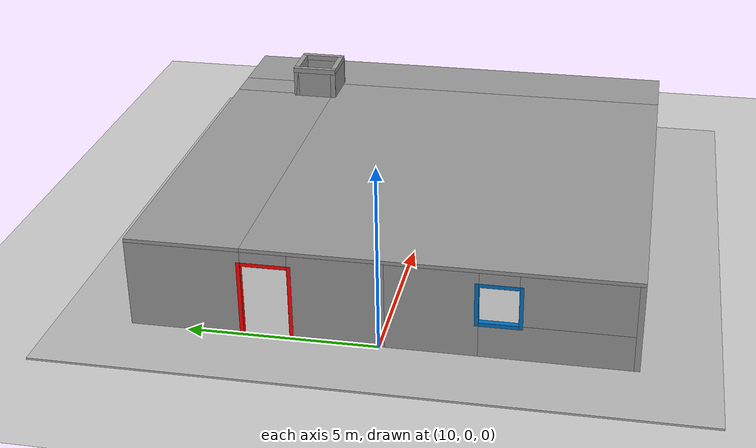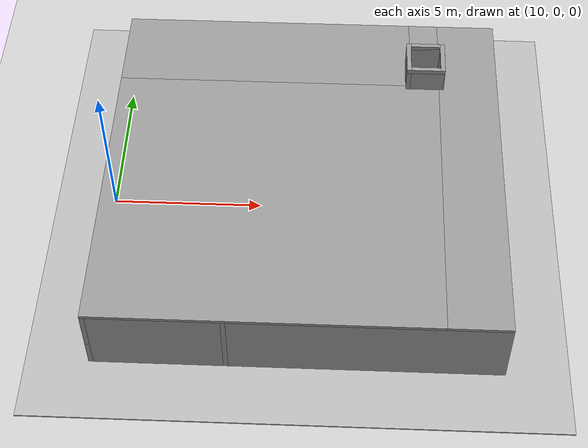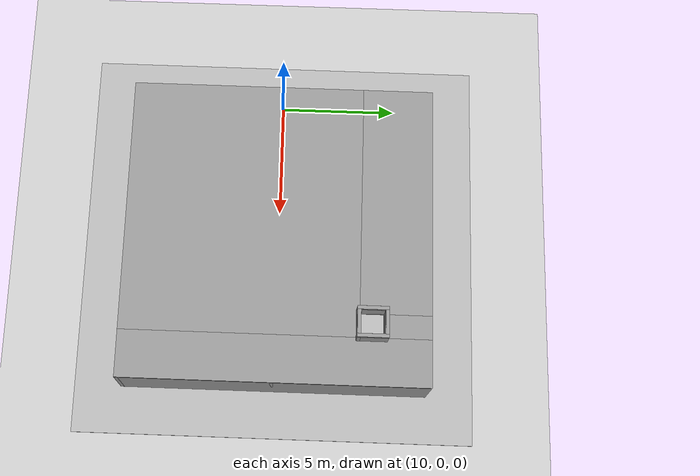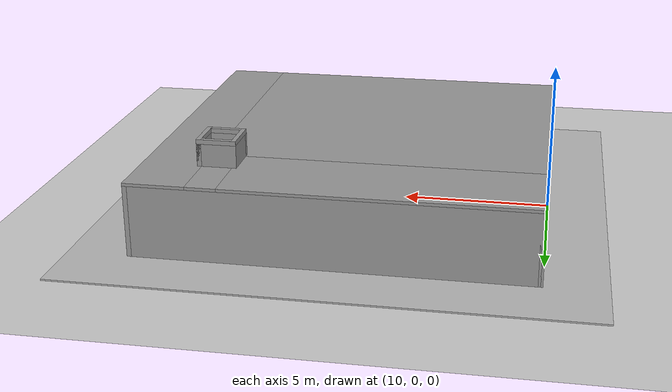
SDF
<?xml version="1.0" ?>
<sdf version="1.5">
  <world name="default">

    <!-- Place user camera -->
    <gui>
        <camera name="user_camera">
            <pose>-4.894847 8.114561 4.637910 0.000000 0.307999 -0.659998</pose>
        </camera>
    </gui>

    <!-- A global light source -->
    <include>
      <uri>model://sun</uri>
    </include>
    <!-- A ground plane -->
    <include>
      <uri>model://ground_plane</uri>
    </include>

    <!-- The IMAV 2016 indoor building -->
    <include>
        <uri>model://imav2016_indoor</uri>
        <pose>16.5 0 0 0 0 3.14</pose>
    </include>
  </world>
</sdf>

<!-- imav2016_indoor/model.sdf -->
<sdf version='1.6'>
  <model name='imav2016_indoor'>
    <pose frame=''>0 0 0 0 -0 0</pose>

    <link name='Floor_0'>
      <collision name='Floor_0_Collision_0'>
        <geometry>
          <box>
            <size>2 13 0.1</size>
          </box>
        </geometry>
        <pose frame=''>-5.5 0 0.05 0 -0 0</pose>
      </collision>
      <visual name='Floor_0_Visual_0'>
        <pose frame=''>-5.5 0 0.05 0 -0 0</pose>
        <geometry>
          <box>
            <size>2 13 0.1</size>
          </box>
        </geometry>
        <material>
          <script>
            <uri>file://media/materials/scripts/gazebo.material</uri>
            <name>Gazebo/Grey</name>
          </script>
          <ambient>1 1 1 1</ambient>
        </material>
        <meta>
          <layer>1</layer>
        </meta>
      </visual>

      <collision name='Floor_0_Collision_1'>
        <geometry>
          <box>
            <size>11 10 0.1</size>
          </box>
        </geometry>
        <pose frame=''>1 1.5 0.05 0 -0 0</pose>
      </collision>
      <visual name='Floor_0_Visual_1'>
        <pose frame=''>1 1.5 0.05 0 -0 0</pose>
        <geometry>
          <box>
            <size>11 10 0.1</size>
          </box>
        </geometry>
        <material>
          <script>
            <uri>file://media/materials/scripts/gazebo.material</uri>
            <name>Gazebo/Grey</name>
          </script>
          <ambient>1 1 1 1</ambient>
        </material>
        <meta>
          <layer>1</layer>
        </meta>
      </visual>

      <collision name='Floor_0_Collision_2'>
        <geometry>
          <box>
            <size>10 3 0.1</size>
          </box>
        </geometry>
        <pose frame=''>1.5 -5 0.05 0 -0 0</pose>
      </collision>
      <visual name='Floor_0_Visual_2'>
        <pose frame=''>1.5 -5 0.05 0 -0 0</pose>
        <geometry>
          <box>
            <size>10 3 0.1</size>
          </box>
        </geometry>
        <material>
          <script>
            <uri>file://media/materials/scripts/gazebo.material</uri>
            <name>Gazebo/Grey</name>
          </script>
          <ambient>1 1 1 1</ambient>
        </material>
        <meta>
          <layer>1</layer>
        </meta>
      </visual>

      <collision name='Floor_0_Collision_3'>
        <geometry>
          <box>
            <size>1 2 0.1</size>
          </box>
        </geometry>
        <pose frame=''>-4 -5.5 0.05 0 -0 0</pose>
      </collision>
      <visual name='Floor_0_Visual_3'>
        <pose frame=''>-4 -5.5 0.05 0 -0 0</pose>
        <geometry>
          <box>
            <size>1 2 0.1</size>
          </box>
        </geometry>
        <material>
          <script>
            <uri>file://media/materials/scripts/gazebo.material</uri>
            <name>Gazebo/Grey</name>
          </script>
          <ambient>1 1 1 1</ambient>
        </material>
        <meta>
          <layer>1</layer>
        </meta>
      </visual>

      <pose frame=''>0 0 2.4 0 -0 0</pose>
    </link>

    <link name='Wall_14'>
      <pose frame=''>0 0.075 0 0 -0 0</pose>
      <visual name='Wall_14_Visual_0'>
        <pose frame=''>-5.725 0 1.2 0 -0 0</pose>
        <geometry>
          <box>
            <size>1.55 0.15 2.4</size>
          </box>
        </geometry>
        <material>
          <script>
            <uri>file://media/materials/scripts/gazebo.material</uri>
            <name>Gazebo/Grey</name>
          </script>
          <ambient>1 1 1 1</ambient>
        </material>
        <meta>
          <layer>0</layer>
        </meta>
      </visual>
      <collision name='Wall_14_Collision_0'>
        <geometry>
          <box>
            <size>1.55 0.15 2.4</size>
          </box>
        </geometry>
        <pose frame=''>-5.725 0 1.2 0 -0 0</pose>
      </collision>
      <visual name='Wall_14_Visual_1'>
        <pose frame=''>-2.1375 0 1.2 0 -0 0</pose>
        <geometry>
          <box>
            <size>3.225 0.15 2.4</size>
          </box>
        </geometry>
        <material>
          <script>
            <uri>file://media/materials/scripts/gazebo.material</uri>
            <name>Gazebo/Grey</name>
          </script>
          <ambient>1 1 1 1</ambient>
        </material>
        <meta>
          <layer>0</layer>
        </meta>
      </visual>
      <collision name='Wall_14_Collision_1'>
        <geometry>
          <box>
            <size>3.225 0.15 2.4</size>
          </box>
        </geometry>
        <pose frame=''>-2.1375 0 1.2 0 -0 0</pose>
      </collision>
      <visual name='Wall_14_Visual_2'>
        <pose frame=''>2.2125 0 1.2 0 -0 0</pose>
        <geometry>
          <box>
            <size>3.075 0.15 2.4</size>
          </box>
        </geometry>
        <material>
          <script>
            <uri>file://media/materials/scripts/gazebo.material</uri>
            <name>Gazebo/Grey</name>
          </script>
          <ambient>1 1 1 1</ambient>
        </material>
        <meta>
          <layer>0</layer>
        </meta>
      </visual>
      <collision name='Wall_14_Collision_2'>
        <geometry>
          <box>
            <size>3.075 0.15 2.4</size>
          </box>
        </geometry>
        <pose frame=''>2.2125 0 1.2 0 -0 0</pose>
      </collision>
      <visual name='Wall_14_Visual_3'>
        <pose frame=''>5.725 0 1.2 0 -0 0</pose>
        <geometry>
          <box>
            <size>1.55 0.15 2.4</size>
          </box>
        </geometry>
        <material>
          <script>
            <uri>file://media/materials/scripts/gazebo.material</uri>
            <name>Gazebo/Grey</name>
          </script>
          <ambient>1 1 1 1</ambient>
        </material>
        <meta>
          <layer>0</layer>
        </meta>
      </visual>
      <collision name='Wall_14_Collision_3'>
        <geometry>
          <box>
            <size>1.55 0.15 2.4</size>
          </box>
        </geometry>
        <pose frame=''>5.725 0 1.2 0 -0 0</pose>
      </collision>
      <visual name='Wall_14_Visual_4'>
        <pose frame=''>-4.35 0 2.2 0 -0 0</pose>
        <geometry>
          <box>
            <size>1.2 0.15 0.4</size>
          </box>
        </geometry>
        <material>
          <script>
            <uri>file://media/materials/scripts/gazebo.material</uri>
            <name>Gazebo/Grey</name>
          </script>
          <ambient>1 1 1 1</ambient>
        </material>
        <meta>
          <layer>0</layer>
        </meta>
      </visual>
      <collision name='Wall_14_Collision_4'>
        <geometry>
          <box>
            <size>1.2 0.15 0.4</size>
          </box>
        </geometry>
        <pose frame=''>-4.35 0 2.2 0 -0 0</pose>
      </collision>
      <visual name='Wall_14_Visual_5'>
        <pose frame=''>0.075 0 2.2 0 -0 0</pose>
        <geometry>
          <box>
            <size>1.2 0.15 0.4</size>
          </box>
        </geometry>
        <material>
          <script>
            <uri>file://media/materials/scripts/gazebo.material</uri>
            <name>Gazebo/Grey</name>
          </script>
          <ambient>1 1 1 1</ambient>
        </material>
        <meta>
          <layer>0</layer>
        </meta>
      </visual>
      <collision name='Wall_14_Collision_5'>
        <geometry>
          <box>
            <size>1.2 0.15 0.4</size>
          </box>
        </geometry>
        <pose frame=''>0.075 0 2.2 0 -0 0</pose>
      </collision>
      <visual name='Wall_14_Visual_6'>
        <pose frame=''>4.35 0 2.2 0 -0 0</pose>
        <geometry>
          <box>
            <size>1.2 0.15 0.4</size>
          </box>
        </geometry>
        <material>
          <script>
            <uri>file://media/materials/scripts/gazebo.material</uri>
            <name>Gazebo/Grey</name>
          </script>
          <ambient>1 1 1 1</ambient>
        </material>
        <meta>
          <layer>0</layer>
        </meta>
      </visual>
      <collision name='Wall_14_Collision_6'>
        <geometry>
          <box>
            <size>1.2 0.15 0.4</size>
          </box>
        </geometry>
        <pose frame=''>4.35 0 2.2 0 -0 0</pose>
      </collision>
    </link>
    <link name='Wall_16'>
      <collision name='Wall_16_Collision'>
        <geometry>
          <box>
            <size>6.5 0.15 2.4</size>
          </box>
        </geometry>
        <pose frame=''>0 0 1.2 0 -0 0</pose>
      </collision>
      <visual name='Wall_16_Visual'>
        <pose frame=''>0 0 1.2 0 -0 0</pose>
        <geometry>
          <box>
            <size>6.5 0.15 2.4</size>
          </box>
        </geometry>
        <material>
          <script>
            <uri>file://media/materials/scripts/gazebo.material</uri>
            <name>Gazebo/Grey</name>
          </script>
          <ambient>1 1 1 1</ambient>
        </material>
        <meta>
          <layer>0</layer>
        </meta>
      </visual>
      <pose frame=''>-2.2 3.25 0 0 0 -1.5708</pose>
    </link>
    <link name='Wall_18'>
      <collision name='Wall_18_Collision'>
        <geometry>
          <box>
            <size>6.5 0.15 2.4</size>
          </box>
        </geometry>
        <pose frame=''>0 0 1.2 0 -0 0</pose>
      </collision>
      <visual name='Wall_18_Visual'>
        <pose frame=''>0 0 1.2 0 -0 0</pose>
        <geometry>
          <box>
            <size>6.5 0.15 2.4</size>
          </box>
        </geometry>
        <material>
          <script>
            <uri>file://media/materials/scripts/gazebo.material</uri>
            <name>Gazebo/Grey</name>
          </script>
          <ambient>1 1 1 1</ambient>
        </material>
        <meta>
          <layer>0</layer>
        </meta>
      </visual>
      <pose frame=''>2.2 3.25 0 0 0 -1.5708</pose>
    </link>
    <link name='Wall_2'>
      <collision name='Wall_2_Collision'>
        <geometry>
          <box>
            <size>13 0.15 2.4</size>
          </box>
        </geometry>
        <pose frame=''>0 0 1.2 0 -0 0</pose>
      </collision>
      <visual name='Wall_2_Visual'>
        <pose frame=''>0 0 1.2 0 -0 0</pose>
        <geometry>
          <box>
            <size>13 0.15 2.4</size>
          </box>
        </geometry>
        <material>
          <script>
            <uri>file://media/materials/scripts/gazebo.material</uri>
            <name>Gazebo/Grey</name>
          </script>
          <ambient>1 1 1 1</ambient>
        </material>
        <meta>
          <layer>0</layer>
        </meta>
      </visual>
      <pose frame=''>0 -6.425 0 0 -0 0</pose>
    </link>

	<!-- Chaminé -->
    <link name='Wall_24'>
      <collision name='Wall_24_Collision'>
        <geometry>
          <box>
            <size>1.3 0.15 1</size>
          </box>
        </geometry>
        <pose frame=''>0 0 0.5 0 -0 0</pose>
      </collision>
      <visual name='Wall_24_Visual'>
        <pose frame=''>0 0 0.5 0 -0 0</pose>
        <geometry>
          <box>
            <size>1.3 0.15 1</size>
          </box>
        </geometry>
        <material>
          <script>
            <uri>file://media/materials/scripts/gazebo.material</uri>
            <name>Gazebo/Grey</name>
          </script>
          <ambient>1 1 1 1</ambient>
        </material>
        <meta>
          <layer>1</layer>
        </meta>
      </visual>
      <pose frame=''>-4.575 -4 2.4 0 0 -1.5708</pose>
    </link>
    <link name='Wall_25'>
      <collision name='Wall_25_Collision'>
        <geometry>
          <box>
            <size>1.3 0.15 1</size>
          </box>
        </geometry>
        <pose frame=''>0 0 0.5 0 -0 0</pose>
      </collision>
      <visual name='Wall_25_Visual'>
        <pose frame=''>0 0 0.5 0 -0 0</pose>
        <geometry>
          <box>
            <size>1.3 0.15 1</size>
          </box>
        </geometry>
        <material>
          <script>
            <uri>file://media/materials/scripts/gazebo.material</uri>
            <name>Gazebo/Grey</name>
          </script>
          <ambient>1 1 1 1</ambient>
        </material>
        <meta>
          <layer>1</layer>
        </meta>
      </visual>
      <pose frame=''>-4 -4.575 2.4 0 -0 0</pose>
    </link>
    <link name='Wall_26'>
      <collision name='Wall_26_Collision'>
        <geometry>
          <box>
            <size>1.3 0.15 1</size>
          </box>
        </geometry>
        <pose frame=''>0 0 0.5 0 -0 0</pose>
      </collision>
      <visual name='Wall_26_Visual'>
        <pose frame=''>0 0 0.5 0 -0 0</pose>
        <geometry>
          <box>
            <size>1.3 0.15 1</size>
          </box>
        </geometry>
        <material>
          <script>
            <uri>file://media/materials/scripts/gazebo.material</uri>
            <name>Gazebo/Grey</name>
          </script>
          <ambient>1 1 1 1</ambient>
        </material>
        <meta>
          <layer>1</layer>
        </meta>
      </visual>
      <pose frame=''>-3.425 -4 2.4 0 -0 1.5708</pose>
    </link>
    <link name='Wall_28'>
      <collision name='Wall_28_Collision'>
        <geometry>
          <box>
            <size>1.3 0.15 1</size>
          </box>
        </geometry>
        <pose frame=''>0 0 0.5 0 -0 0</pose>
      </collision>
      <visual name='Wall_28_Visual'>
        <pose frame=''>0 0 0.5 0 -0 0</pose>
        <geometry>
          <box>
            <size>1.3 0.15 1</size>
          </box>
        </geometry>
        <material>
          <script>
            <uri>file://media/materials/scripts/gazebo.material</uri>
            <name>Gazebo/Grey</name>
          </script>
          <ambient>1 1 1 1</ambient>
        </material>
        <meta>
          <layer>1</layer>
        </meta>
      </visual>
      <pose frame=''>-4 -3.425 2.4 0 -0 0</pose>
    </link>

	<!-- Parede da frente -->
    <link name='Wall_4'>
      <pose frame=''>6.425 0 0 0 -0 1.5708</pose>
      <visual name='Wall_4_Visual_0'>
        <pose frame=''>-5 0 1.2 0 -0 0</pose>
        <geometry>
          <box>
            <size>3 0.15 2.4</size>
          </box>
        </geometry>
        <material>
          <script>
            <uri>file://media/materials/scripts/gazebo.material</uri>
            <name>Gazebo/Grey</name>
          </script>
          <ambient>1 1 1 1</ambient>
        </material>
        <meta>
          <layer>0</layer>
        </meta>
      </visual>
      <collision name='Wall_4_Collision_0'>
        <geometry>
          <box>
            <size>3 0.15 2.4</size>
          </box>
        </geometry>
        <pose frame=''>-5 0 1.2 0 -0 0</pose>
      </collision>
      <visual name='Wall_4_Visual_1'>
        <pose frame=''>0.1 0 1.2 0 -0 0</pose>
        <geometry>
          <box>
            <size>4.8 0.15 2.4</size>
          </box>
        </geometry>
        <material>
          <script>
            <uri>file://media/materials/scripts/gazebo.material</uri>
            <name>Gazebo/Grey</name>
          </script>
          <ambient>1 1 1 1</ambient>
        </material>
        <meta>
          <layer>0</layer>
        </meta>
      </visual>
      <collision name='Wall_4_Collision_1'>
        <geometry>
          <box>
            <size>4.8 0.15 2.4</size>
          </box>
        </geometry>
        <pose frame=''>0.1 0 1.2 0 -0 0</pose>
      </collision>
      <visual name='Wall_4_Visual_2'>
        <pose frame=''>4.5 0 0.5 0 -0 0</pose>
        <geometry>
          <box>
            <size>4 0.15 1</size>
          </box>
        </geometry>
        <material>
          <script>
            <uri>file://media/materials/scripts/gazebo.material</uri>
            <name>Gazebo/Grey</name>
          </script>
          <ambient>1 1 1 1</ambient>
        </material>
        <meta>
          <layer>0</layer>
        </meta>
      </visual>
      <collision name='Wall_4_Collision_2'>
        <geometry>
          <box>
            <size>4 0.15 1</size>
          </box>
        </geometry>
        <pose frame=''>4.5 0 0.5 0 -0 0</pose>
      </collision>
      <visual name='Wall_4_Visual_3'>
        <pose frame=''>5 0 1.7 0 -0 0</pose>
        <geometry>
          <box>
            <size>3 0.15 1.4</size>
          </box>
        </geometry>
        <material>
          <script>
            <uri>file://media/materials/scripts/gazebo.material</uri>
            <name>Gazebo/Grey</name>
          </script>
          <ambient>1 1 1 1</ambient>
        </material>
        <meta>
          <layer>0</layer>
        </meta>
      </visual>
      <collision name='Wall_4_Collision_3'>
        <geometry>
          <box>
            <size>3 0.15 1.4</size>
          </box>
        </geometry>
        <pose frame=''>5 0 1.7 0 -0 0</pose>
      </collision>
      <visual name='Wall_4_Visual_4'>
        <pose frame=''>-2.9 0 2.2 0 -0 0</pose>
        <geometry>
          <box>
            <size>1.2 0.15 0.4</size>
          </box>
        </geometry>
        <material>
          <script>
            <uri>file://media/materials/scripts/gazebo.material</uri>
            <name>Gazebo/Grey</name>
          </script>
          <ambient>1 1 1 1</ambient>
        </material>
        <meta>
          <layer>0</layer>
        </meta>
      </visual>
      <collision name='Wall_4_Collision_4'>
        <geometry>
          <box>
            <size>1.2 0.15 0.4</size>
          </box>
        </geometry>
        <pose frame=''>-2.9 0 2.2 0 -0 0</pose>
      </collision>
      <visual name='Wall_4_Visual_5'>
        <pose frame=''>3 0 2.2 0 -0 0</pose>
        <geometry>
          <box>
            <size>1 0.15 0.4</size>
          </box>
        </geometry>
        <material>
          <script>
            <uri>file://media/materials/scripts/gazebo.material</uri>
            <name>Gazebo/Grey</name>
          </script>
          <ambient>1 1 1 1</ambient>
        </material>
        <meta>
          <layer>0</layer>
        </meta>
      </visual>
      <collision name='Wall_4_Collision_5'>
        <geometry>
          <box>
            <size>1 0.15 0.4</size>
          </box>
        </geometry>
        <pose frame=''>3 0 2.2 0 -0 0</pose>
      </collision>
    </link>
    <link name='Wall_6'>
      <collision name='Wall_6_Collision'>
        <geometry>
          <box>
            <size>13 0.15 2.4</size>
          </box>
        </geometry>
        <pose frame=''>0 0 1.2 0 -0 0</pose>
      </collision>
      <visual name='Wall_6_Visual'>
        <pose frame=''>0 0 1.2 0 -0 0</pose>
        <geometry>
          <box>
            <size>13 0.15 2.4</size>
          </box>
        </geometry>
        <material>
          <script>
            <uri>file://media/materials/scripts/gazebo.material</uri>
            <name>Gazebo/Grey</name>
          </script>
          <ambient>1 1 1 1</ambient>
        </material>
        <meta>
          <layer>0</layer>
        </meta>
      </visual>
      <pose frame=''>0 6.425 0 0 -0 3.14159</pose>
    </link>
    <link name='Wall_8'>
      <collision name='Wall_8_Collision'>
        <geometry>
          <box>
            <size>13 0.15 2.4</size>
          </box>
        </geometry>
        <pose frame=''>0 0 1.2 0 -0 0</pose>
      </collision>
      <visual name='Wall_8_Visual'>
        <pose frame=''>0 0 1.2 0 -0 0</pose>
        <geometry>
          <box>
            <size>13 0.15 2.4</size>
          </box>
        </geometry>
        <material>
          <script>
            <uri>file://media/materials/scripts/gazebo.material</uri>
            <name>Gazebo/Grey</name>
          </script>
          <ambient>1 1 1 1</ambient>
        </material>
        <meta>
          <layer>0</layer>
        </meta>
      </visual>
      <pose frame=''>-6.425 0 0 0 0 -1.5708</pose>
    </link>

	<!-- Portas, janelas e chaminé -->
	<link name='Porta_1'>
      <collision name='Porta_1_Collision_0'>
        <geometry>
          <box>
            <size>0.1 0.001 2.1</size>
          </box>
        </geometry>
        <pose frame=''>-0.65 -0.0755 1.05 0 -0 0</pose>
      </collision>
      <visual name='Porta_1_Visual_0'>
        <geometry>
          <box>
            <size>0.1 0.001 2.1</size>
          </box>
        </geometry>
        <pose frame=''>-0.65 -0.0755 1.05 0 -0 0</pose>
        <material>
          <script>
            <uri>file://media/materials/scripts/gazebo.material</uri>
            <name>Gazebo/Grey</name>
          </script>
          <ambient>1 0 0 1</ambient>
        </material>
        <meta>
          <layer>1</layer>
        </meta>
      </visual>
      <collision name='Porta_1_Collision_1'>
        <geometry>
          <box>
            <size>1.2 0.001 0.1</size>
          </box>
        </geometry>
        <pose frame=''>0 -0.0755 2.05 0 -0 0</pose>
      </collision>
      <visual name='Porta_1_Visual_1'>
        <geometry>
          <box>
            <size>1.2 0.001 0.1</size>
          </box>
        </geometry>
        <pose frame=''>0 -0.0755 2.05 0 -0 0</pose>
        <material>
          <script>
            <uri>file://media/materials/scripts/gazebo.material</uri>
            <name>Gazebo/Grey</name>
          </script>
          <ambient>1 0 0 1</ambient>
        </material>
        <meta>
          <layer>1</layer>
        </meta>
      </visual>
      <collision name='Porta_1_Collision_2'>
        <geometry>
          <box>
            <size>0.1 0.001 2.1</size>
          </box>
        </geometry>
        <pose frame=''>0.65 -0.0755 1.05 0 -0 0</pose>
      </collision>
      <visual name='Porta_1_Visual_2'>
        <geometry>
          <box>
            <size>0.1 0.001 2.1</size>
          </box>
        </geometry>
        <pose frame=''>0.65 -0.0755 1.05 0 -0 0</pose>
        <material>
          <script>
            <uri>file://media/materials/scripts/gazebo.material</uri>
            <name>Gazebo/Grey</name>
          </script>
          <ambient>1 0 0 1</ambient>
        </material>
        <meta>
          <layer>1</layer>
        </meta>
      </visual>
      <collision name='Porta_1_Collision_3'>
        <geometry>
          <box>
            <size>0.152 0.001 2</size>
          </box>
        </geometry>
        <pose frame=''>-0.5995 0 1 0 -0 1.5708</pose>
      </collision>
      <visual name='Porta_1_Visual_3'>
		<geometry>
          <box>
            <size>0.152 0.001 2</size>
          </box>
        </geometry>
        <pose frame=''>-0.5995 0 1 0 -0 1.5708</pose>
        <material>
          <script>
            <uri>file://media/materials/scripts/gazebo.material</uri>
            <name>Gazebo/Grey</name>
          </script>
          <ambient>1 0 0 1</ambient>
        </material>
        <meta>
          <layer>1</layer>
        </meta>
      </visual>
      <collision name='Porta_1_Collision_4'>
        <geometry>
          <box>
            <size>1.198 0.001 0.152</size>
          </box>
        </geometry>
        <pose frame=''>0 0 1.9995 1.5708 -0 0</pose>
      </collision>
      <visual name='Porta_1_Visual_4'>
        <geometry>
          <box>
            <size>1.198 0.001 0.152</size>
          </box>
        </geometry>
        <pose frame=''>0 0 1.9995 1.5708 -0 0</pose>
        <material>
          <script>
            <uri>file://media/materials/scripts/gazebo.material</uri>
            <name>Gazebo/Grey</name>
          </script>
          <ambient>1 0 0 1</ambient>
        </material>
        <meta>
          <layer>1</layer>
        </meta>
      </visual>
      <collision name='Porta_1_Collision_5'>
        <geometry>
          <box>
            <size>0.152 0.001 2</size>
          </box>
        </geometry>
        <pose frame=''>0.5995 0 1 0 -0 1.5708</pose>
      </collision>
      <visual name='Porta_1_Visual_5'>
		<geometry>
          <box>
            <size>0.152 0.001 2</size>
          </box>
        </geometry>
        <pose frame=''>0.5995 0 1 0 -0 1.5708</pose>
        <material>
          <script>
            <uri>file://media/materials/scripts/gazebo.material</uri>
            <name>Gazebo/Grey</name>
          </script>
          <ambient>1 0 0 1</ambient>
        </material>
        <meta>
          <layer>1</layer>
        </meta>
      </visual>
      <collision name='Porta_1_Collision_6'>
        <geometry>
          <box>
            <size>0.1 0.001 2.1</size>
          </box>
        </geometry>
        <pose frame=''>-0.65 0.0755 1.05 0 -0 0</pose>
      </collision>
      <visual name='Porta_1_Visual_6'>
        <geometry>
          <box>
            <size>0.1 0.001 2.1</size>
          </box>
        </geometry>
        <pose frame=''>-0.65 0.0755 1.05 0 -0 0</pose>
        <material>
          <script>
            <uri>file://media/materials/scripts/gazebo.material</uri>
            <name>Gazebo/Grey</name>
          </script>
          <ambient>1 0 0 1</ambient>
        </material>
        <meta>
          <layer>1</layer>
        </meta>
      </visual>
      <collision name='Porta_1_Collision_7'>
        <geometry>
          <box>
            <size>1.2 0.001 0.1</size>
          </box>
        </geometry>
        <pose frame=''>0 0.0755 2.05 0 -0 0</pose>
      </collision>
      <visual name='Porta_1_Visual_7'>
        <geometry>
          <box>
            <size>1.2 0.001 0.1</size>
          </box>
        </geometry>
        <pose frame=''>0 0.0755 2.05 0 -0 0</pose>
        <material>
          <script>
            <uri>file://media/materials/scripts/gazebo.material</uri>
            <name>Gazebo/Grey</name>
          </script>
          <ambient>1 0 0 1</ambient>
        </material>
        <meta>
          <layer>1</layer>
        </meta>
      </visual>
      <collision name='Porta_1_Collision_8'>
        <geometry>
          <box>
            <size>0.1 0.001 2.1</size>
          </box>
        </geometry>
        <pose frame=''>0.65 0.0755 1.05 0 -0 0</pose>
      </collision>
      <visual name='Porta_1_Visual_8'>
        <geometry>
          <box>
            <size>0.1 0.001 2.1</size>
          </box>
        </geometry>
        <pose frame=''>0.65 0.0755 1.05 0 -0 0</pose>
        <material>
          <script>
            <uri>file://media/materials/scripts/gazebo.material</uri>
            <name>Gazebo/Grey</name>
          </script>
          <ambient>1 0 0 1</ambient>
        </material>
        <meta>
          <layer>1</layer>
        </meta>
      </visual>
      <pose frame=''>6.425 -2.9 0 0 -0 1.5708</pose>
	</link>

	<link name='Porta_2'>
      <collision name='Porta_2_Collision_0'>
        <geometry>
          <box>
            <size>0.1 0.001 2.1</size>
          </box>
        </geometry>
        <pose frame=''>-0.65 -0.0755 1.05 0 -0 0</pose>
      </collision>
      <visual name='Porta_2_Visual_0'>
        <geometry>
          <box>
            <size>0.1 0.001 2.1</size>
          </box>
        </geometry>
        <pose frame=''>-0.65 -0.0755 1.05 0 -0 0</pose>
        <material>
          <script>
            <uri>file://media/materials/scripts/gazebo.material</uri>
            <name>Gazebo/Grey</name>
          </script>
          <ambient>1 0 0 1</ambient>
        </material>
        <meta>
          <layer>1</layer>
        </meta>
      </visual>
      <collision name='Porta_2_Collision_1'>
        <geometry>
          <box>
            <size>1.2 0.001 0.1</size>
          </box>
        </geometry>
        <pose frame=''>0 -0.0755 2.05 0 -0 0</pose>
      </collision>
      <visual name='Porta_2_Visual_1'>
        <geometry>
          <box>
            <size>1.2 0.001 0.1</size>
          </box>
        </geometry>
        <pose frame=''>0 -0.0755 2.05 0 -0 0</pose>
        <material>
          <script>
            <uri>file://media/materials/scripts/gazebo.material</uri>
            <name>Gazebo/Grey</name>
          </script>
          <ambient>1 0 0 1</ambient>
        </material>
        <meta>
          <layer>1</layer>
        </meta>
      </visual>
      <collision name='Porta_2_Collision_2'>
        <geometry>
          <box>
            <size>0.1 0.001 2.1</size>
          </box>
        </geometry>
        <pose frame=''>0.65 -0.0755 1.05 0 -0 0</pose>
      </collision>
      <visual name='Porta_2_Visual_2'>
        <geometry>
          <box>
            <size>0.1 0.001 2.1</size>
          </box>
        </geometry>
        <pose frame=''>0.65 -0.0755 1.05 0 -0 0</pose>
        <material>
          <script>
            <uri>file://media/materials/scripts/gazebo.material</uri>
            <name>Gazebo/Grey</name>
          </script>
          <ambient>1 0 0 1</ambient>
        </material>
        <meta>
          <layer>1</layer>
        </meta>
      </visual>
      <collision name='Porta_2_Collision_3'>
        <geometry>
          <box>
            <size>0.152 0.001 2</size>
          </box>
        </geometry>
        <pose frame=''>-0.5995 0 1 0 -0 1.5708</pose>
      </collision>
      <visual name='Porta_2_Visual_3'>
		<geometry>
          <box>
            <size>0.152 0.001 2</size>
          </box>
        </geometry>
        <pose frame=''>-0.5995 0 1 0 -0 1.5708</pose>
        <material>
          <script>
            <uri>file://media/materials/scripts/gazebo.material</uri>
            <name>Gazebo/Grey</name>
          </script>
          <ambient>1 0 0 1</ambient>
        </material>
        <meta>
          <layer>1</layer>
        </meta>
      </visual>
      <collision name='Porta_2_Collision_4'>
        <geometry>
          <box>
            <size>1.198 0.001 0.152</size>
          </box>
        </geometry>
        <pose frame=''>0 0 1.9995 1.5708 -0 0</pose>
      </collision>
      <visual name='Porta_2_Visual_4'>
        <geometry>
          <box>
            <size>1.198 0.001 0.152</size>
          </box>
        </geometry>
        <pose frame=''>0 0 1.9995 1.5708 -0 0</pose>
        <material>
          <script>
            <uri>file://media/materials/scripts/gazebo.material</uri>
            <name>Gazebo/Grey</name>
          </script>
          <ambient>1 0 0 1</ambient>
        </material>
        <meta>
          <layer>1</layer>
        </meta>
      </visual>
      <collision name='Porta_2_Collision_5'>
        <geometry>
          <box>
            <size>0.152 0.001 2</size>
          </box>
        </geometry>
        <pose frame=''>0.5995 0 1 0 -0 1.5708</pose>
      </collision>
      <visual name='Porta_2_Visual_5'>
		<geometry>
          <box>
            <size>0.152 0.001 2</size>
          </box>
        </geometry>
        <pose frame=''>0.5995 0 1 0 -0 1.5708</pose>
        <material>
          <script>
            <uri>file://media/materials/scripts/gazebo.material</uri>
            <name>Gazebo/Grey</name>
          </script>
          <ambient>1 0 0 1</ambient>
        </material>
        <meta>
          <layer>1</layer>
        </meta>
      </visual>
      <collision name='Porta_2_Collision_6'>
        <geometry>
          <box>
            <size>0.1 0.001 2.1</size>
          </box>
        </geometry>
        <pose frame=''>-0.65 0.0755 1.05 0 -0 0</pose>
      </collision>
      <visual name='Porta_2_Visual_6'>
        <geometry>
          <box>
            <size>0.1 0.001 2.1</size>
          </box>
        </geometry>
        <pose frame=''>-0.65 0.0755 1.05 0 -0 0</pose>
        <material>
          <script>
            <uri>file://media/materials/scripts/gazebo.material</uri>
            <name>Gazebo/Grey</name>
          </script>
          <ambient>1 0 0 1</ambient>
        </material>
        <meta>
          <layer>1</layer>
        </meta>
      </visual>
      <collision name='Porta_2_Collision_7'>
        <geometry>
          <box>
            <size>1.2 0.001 0.1</size>
          </box>
        </geometry>
        <pose frame=''>0 0.0755 2.05 0 -0 0</pose>
      </collision>
      <visual name='Porta_2_Visual_7'>
        <geometry>
          <box>
            <size>1.2 0.001 0.1</size>
          </box>
        </geometry>
        <pose frame=''>0 0.0755 2.05 0 -0 0</pose>
        <material>
          <script>
            <uri>file://media/materials/scripts/gazebo.material</uri>
            <name>Gazebo/Grey</name>
          </script>
          <ambient>1 0 0 1</ambient>
        </material>
        <meta>
          <layer>1</layer>
        </meta>
      </visual>
      <collision name='Porta_2_Collision_8'>
        <geometry>
          <box>
            <size>0.1 0.001 2.1</size>
          </box>
        </geometry>
        <pose frame=''>0.65 0.0755 1.05 0 -0 0</pose>
      </collision>
      <visual name='Porta_2_Visual_8'>
        <geometry>
          <box>
            <size>0.1 0.001 2.1</size>
          </box>
        </geometry>
        <pose frame=''>0.65 0.0755 1.05 0 -0 0</pose>
        <material>
          <script>
            <uri>file://media/materials/scripts/gazebo.material</uri>
            <name>Gazebo/Grey</name>
          </script>
          <ambient>1 0 0 1</ambient>
        </material>
        <meta>
          <layer>1</layer>
        </meta>
      </visual>
      <pose frame=''>4.35 0.075 0 0 -0 0</pose>
	</link>

	<link name='Porta_3'>
      <collision name='Porta_3_Collision_0'>
        <geometry>
          <box>
            <size>0.1 0.001 2.1</size>
          </box>
        </geometry>
        <pose frame=''>-0.65 -0.0755 1.05 0 -0 0</pose>
      </collision>
      <visual name='Porta_3_Visual_0'>
        <geometry>
          <box>
            <size>0.1 0.001 2.1</size>
          </box>
        </geometry>
        <pose frame=''>-0.65 -0.0755 1.05 0 -0 0</pose>
        <material>
          <script>
            <uri>file://media/materials/scripts/gazebo.material</uri>
            <name>Gazebo/Grey</name>
          </script>
          <ambient>1 0 0 1</ambient>
        </material>
        <meta>
          <layer>1</layer>
        </meta>
      </visual>
      <collision name='Porta_3_Collision_1'>
        <geometry>
          <box>
            <size>1.2 0.001 0.1</size>
          </box>
        </geometry>
        <pose frame=''>0 -0.0755 2.05 0 -0 0</pose>
      </collision>
      <visual name='Porta_3_Visual_1'>
        <geometry>
          <box>
            <size>1.2 0.001 0.1</size>
          </box>
        </geometry>
        <pose frame=''>0 -0.0755 2.05 0 -0 0</pose>
        <material>
          <script>
            <uri>file://media/materials/scripts/gazebo.material</uri>
            <name>Gazebo/Grey</name>
          </script>
          <ambient>1 0 0 1</ambient>
        </material>
        <meta>
          <layer>1</layer>
        </meta>
      </visual>
      <collision name='Porta_3_Collision_2'>
        <geometry>
          <box>
            <size>0.1 0.001 2.1</size>
          </box>
        </geometry>
        <pose frame=''>0.65 -0.0755 1.05 0 -0 0</pose>
      </collision>
      <visual name='Porta_3_Visual_2'>
        <geometry>
          <box>
            <size>0.1 0.001 2.1</size>
          </box>
        </geometry>
        <pose frame=''>0.65 -0.0755 1.05 0 -0 0</pose>
        <material>
          <script>
            <uri>file://media/materials/scripts/gazebo.material</uri>
            <name>Gazebo/Grey</name>
          </script>
          <ambient>1 0 0 1</ambient>
        </material>
        <meta>
          <layer>1</layer>
        </meta>
      </visual>
      <collision name='Porta_3_Collision_3'>
        <geometry>
          <box>
            <size>0.152 0.001 2</size>
          </box>
        </geometry>
        <pose frame=''>-0.5995 0 1 0 -0 1.5708</pose>
      </collision>
      <visual name='Porta_3_Visual_3'>
		<geometry>
          <box>
            <size>0.152 0.001 2</size>
          </box>
        </geometry>
        <pose frame=''>-0.5995 0 1 0 -0 1.5708</pose>
        <material>
          <script>
            <uri>file://media/materials/scripts/gazebo.material</uri>
            <name>Gazebo/Grey</name>
          </script>
          <ambient>1 0 0 1</ambient>
        </material>
        <meta>
          <layer>1</layer>
        </meta>
      </visual>
      <collision name='Porta_3_Collision_4'>
        <geometry>
          <box>
            <size>1.198 0.001 0.152</size>
          </box>
        </geometry>
        <pose frame=''>0 0 1.9995 1.5708 -0 0</pose>
      </collision>
      <visual name='Porta_3_Visual_4'>
        <geometry>
          <box>
            <size>1.198 0.001 0.152</size>
          </box>
        </geometry>
        <pose frame=''>0 0 1.9995 1.5708 -0 0</pose>
        <material>
          <script>
            <uri>file://media/materials/scripts/gazebo.material</uri>
            <name>Gazebo/Grey</name>
          </script>
          <ambient>1 0 0 1</ambient>
        </material>
        <meta>
          <layer>1</layer>
        </meta>
      </visual>
      <collision name='Porta_3_Collision_5'>
        <geometry>
          <box>
            <size>0.152 0.001 2</size>
          </box>
        </geometry>
        <pose frame=''>0.5995 0 1 0 -0 1.5708</pose>
      </collision>
      <visual name='Porta_3_Visual_5'>
		<geometry>
          <box>
            <size>0.152 0.001 2</size>
          </box>
        </geometry>
        <pose frame=''>0.5995 0 1 0 -0 1.5708</pose>
        <material>
          <script>
            <uri>file://media/materials/scripts/gazebo.material</uri>
            <name>Gazebo/Grey</name>
          </script>
          <ambient>1 0 0 1</ambient>
        </material>
        <meta>
          <layer>1</layer>
        </meta>
      </visual>
      <collision name='Porta_3_Collision_6'>
        <geometry>
          <box>
            <size>0.1 0.001 2.1</size>
          </box>
        </geometry>
        <pose frame=''>-0.65 0.0755 1.05 0 -0 0</pose>
      </collision>
      <visual name='Porta_3_Visual_6'>
        <geometry>
          <box>
            <size>0.1 0.001 2.1</size>
          </box>
        </geometry>
        <pose frame=''>-0.65 0.0755 1.05 0 -0 0</pose>
        <material>
          <script>
            <uri>file://media/materials/scripts/gazebo.material</uri>
            <name>Gazebo/Grey</name>
          </script>
          <ambient>1 0 0 1</ambient>
        </material>
        <meta>
          <layer>1</layer>
        </meta>
      </visual>
      <collision name='Porta_3_Collision_7'>
        <geometry>
          <box>
            <size>1.2 0.001 0.1</size>
          </box>
        </geometry>
        <pose frame=''>0 0.0755 2.05 0 -0 0</pose>
      </collision>
      <visual name='Porta_3_Visual_7'>
        <geometry>
          <box>
            <size>1.2 0.001 0.1</size>
          </box>
        </geometry>
        <pose frame=''>0 0.0755 2.05 0 -0 0</pose>
        <material>
          <script>
            <uri>file://media/materials/scripts/gazebo.material</uri>
            <name>Gazebo/Grey</name>
          </script>
          <ambient>1 0 0 1</ambient>
        </material>
        <meta>
          <layer>1</layer>
        </meta>
      </visual>
      <collision name='Porta_3_Collision_8'>
        <geometry>
          <box>
            <size>0.1 0.001 2.1</size>
          </box>
        </geometry>
        <pose frame=''>0.65 0.0755 1.05 0 -0 0</pose>
      </collision>
      <visual name='Porta_3_Visual_8'>
        <geometry>
          <box>
            <size>0.1 0.001 2.1</size>
          </box>
        </geometry>
        <pose frame=''>0.65 0.0755 1.05 0 -0 0</pose>
        <material>
          <script>
            <uri>file://media/materials/scripts/gazebo.material</uri>
            <name>Gazebo/Grey</name>
          </script>
          <ambient>1 0 0 1</ambient>
        </material>
        <meta>
          <layer>1</layer>
        </meta>
      </visual>
      <pose frame=''>0.075 0.075 0 0 -0 0</pose>
	</link>

	<link name='Porta_4'>
      <collision name='Porta_4_Collision_0'>
        <geometry>
          <box>
            <size>0.1 0.001 2.1</size>
          </box>
        </geometry>
        <pose frame=''>-0.65 -0.0755 1.05 0 -0 0</pose>
      </collision>
      <visual name='Porta_4_Visual_0'>
        <geometry>
          <box>
            <size>0.1 0.001 2.1</size>
          </box>
        </geometry>
        <pose frame=''>-0.65 -0.0755 1.05 0 -0 0</pose>
        <material>
          <script>
            <uri>file://media/materials/scripts/gazebo.material</uri>
            <name>Gazebo/Grey</name>
          </script>
          <ambient>1 0 0 1</ambient>
        </material>
        <meta>
          <layer>1</layer>
        </meta>
      </visual>
      <collision name='Porta_4_Collision_1'>
        <geometry>
          <box>
            <size>1.2 0.001 0.1</size>
          </box>
        </geometry>
        <pose frame=''>0 -0.0755 2.05 0 -0 0</pose>
      </collision>
      <visual name='Porta_4_Visual_1'>
        <geometry>
          <box>
            <size>1.2 0.001 0.1</size>
          </box>
        </geometry>
        <pose frame=''>0 -0.0755 2.05 0 -0 0</pose>
        <material>
          <script>
            <uri>file://media/materials/scripts/gazebo.material</uri>
            <name>Gazebo/Grey</name>
          </script>
          <ambient>1 0 0 1</ambient>
        </material>
        <meta>
          <layer>1</layer>
        </meta>
      </visual>
      <collision name='Porta_4_Collision_2'>
        <geometry>
          <box>
            <size>0.1 0.001 2.1</size>
          </box>
        </geometry>
        <pose frame=''>0.65 -0.0755 1.05 0 -0 0</pose>
      </collision>
      <visual name='Porta_4_Visual_2'>
        <geometry>
          <box>
            <size>0.1 0.001 2.1</size>
          </box>
        </geometry>
        <pose frame=''>0.65 -0.0755 1.05 0 -0 0</pose>
        <material>
          <script>
            <uri>file://media/materials/scripts/gazebo.material</uri>
            <name>Gazebo/Grey</name>
          </script>
          <ambient>1 0 0 1</ambient>
        </material>
        <meta>
          <layer>1</layer>
        </meta>
      </visual>
      <collision name='Porta_4_Collision_3'>
        <geometry>
          <box>
            <size>0.152 0.001 2</size>
          </box>
        </geometry>
        <pose frame=''>-0.5995 0 1 0 -0 1.5708</pose>
      </collision>
      <visual name='Porta_4_Visual_3'>
		<geometry>
          <box>
            <size>0.152 0.001 2</size>
          </box>
        </geometry>
        <pose frame=''>-0.5995 0 1 0 -0 1.5708</pose>
        <material>
          <script>
            <uri>file://media/materials/scripts/gazebo.material</uri>
            <name>Gazebo/Grey</name>
          </script>
          <ambient>1 0 0 1</ambient>
        </material>
        <meta>
          <layer>1</layer>
        </meta>
      </visual>
      <collision name='Porta_4_Collision_4'>
        <geometry>
          <box>
            <size>1.198 0.001 0.152</size>
          </box>
        </geometry>
        <pose frame=''>0 0 1.9995 1.5708 -0 0</pose>
      </collision>
      <visual name='Porta_4_Visual_4'>
        <geometry>
          <box>
            <size>1.198 0.001 0.152</size>
          </box>
        </geometry>
        <pose frame=''>0 0 1.9995 1.5708 -0 0</pose>
        <material>
          <script>
            <uri>file://media/materials/scripts/gazebo.material</uri>
            <name>Gazebo/Grey</name>
          </script>
          <ambient>1 0 0 1</ambient>
        </material>
        <meta>
          <layer>1</layer>
        </meta>
      </visual>
      <collision name='Porta_4_Collision_5'>
        <geometry>
          <box>
            <size>0.152 0.001 2</size>
          </box>
        </geometry>
        <pose frame=''>0.5995 0 1 0 -0 1.5708</pose>
      </collision>
      <visual name='Porta_4_Visual_5'>
		<geometry>
          <box>
            <size>0.152 0.001 2</size>
          </box>
        </geometry>
        <pose frame=''>0.5995 0 1 0 -0 1.5708</pose>
        <material>
          <script>
            <uri>file://media/materials/scripts/gazebo.material</uri>
            <name>Gazebo/Grey</name>
          </script>
          <ambient>1 0 0 1</ambient>
        </material>
        <meta>
          <layer>1</layer>
        </meta>
      </visual>
      <collision name='Porta_4_Collision_6'>
        <geometry>
          <box>
            <size>0.1 0.001 2.1</size>
          </box>
        </geometry>
        <pose frame=''>-0.65 0.0755 1.05 0 -0 0</pose>
      </collision>
      <visual name='Porta_4_Visual_6'>
        <geometry>
          <box>
            <size>0.1 0.001 2.1</size>
          </box>
        </geometry>
        <pose frame=''>-0.65 0.0755 1.05 0 -0 0</pose>
        <material>
          <script>
            <uri>file://media/materials/scripts/gazebo.material</uri>
            <name>Gazebo/Grey</name>
          </script>
          <ambient>1 0 0 1</ambient>
        </material>
        <meta>
          <layer>1</layer>
        </meta>
      </visual>
      <collision name='Porta_4_Collision_7'>
        <geometry>
          <box>
            <size>1.2 0.001 0.1</size>
          </box>
        </geometry>
        <pose frame=''>0 0.0755 2.05 0 -0 0</pose>
      </collision>
      <visual name='Porta_4_Visual_7'>
        <geometry>
          <box>
            <size>1.2 0.001 0.1</size>
          </box>
        </geometry>
        <pose frame=''>0 0.0755 2.05 0 -0 0</pose>
        <material>
          <script>
            <uri>file://media/materials/scripts/gazebo.material</uri>
            <name>Gazebo/Grey</name>
          </script>
          <ambient>1 0 0 1</ambient>
        </material>
        <meta>
          <layer>1</layer>
        </meta>
      </visual>
      <collision name='Porta_4_Collision_8'>
        <geometry>
          <box>
            <size>0.1 0.001 2.1</size>
          </box>
        </geometry>
        <pose frame=''>0.65 0.0755 1.05 0 -0 0</pose>
      </collision>
      <visual name='Porta_4_Visual_8'>
        <geometry>
          <box>
            <size>0.1 0.001 2.1</size>
          </box>
        </geometry>
        <pose frame=''>0.65 0.0755 1.05 0 -0 0</pose>
        <material>
          <script>
            <uri>file://media/materials/scripts/gazebo.material</uri>
            <name>Gazebo/Grey</name>
          </script>
          <ambient>1 0 0 1</ambient>
        </material>
        <meta>
          <layer>1</layer>
        </meta>
      </visual>
      <pose frame=''>-4.35 0.075 0 0 -0 0</pose>
	</link>

	<link name='Janela'>
      <collision name='Janela_Collision_0'>
        <geometry>
          <box>
            <size>0.1 0.001 1.2</size>
          </box>
        </geometry>
        <pose frame=''>-0.55 -0.0755 1.5 0 -0 0</pose>
      </collision>
      <visual name='Janela_Visual_0'>
        <geometry>
          <box>
            <size>0.1 0.001 1.2</size>
          </box>
        </geometry>
        <pose frame=''>-0.55 -0.0755 1.5 0 -0 0</pose>
        <material>
          <script>
            <uri>file://media/materials/scripts/gazebo.material</uri>
            <name>Gazebo/Grey</name>
          </script>
          <ambient>0 0.435 0.753 1</ambient>
        </material>
        <meta>
          <layer>1</layer>
        </meta>
      </visual>
      <collision name='Janela_Collision_1'>
        <geometry>
          <box>
            <size>1 0.001 0.1</size>
          </box>
        </geometry>
        <pose frame=''>0 -0.0755 2.05 0 -0 0</pose>
      </collision>
      <visual name='Janela_Visual_1'>
        <geometry>
          <box>
            <size>1 0.001 0.1</size>
          </box>
        </geometry>
        <pose frame=''>0 -0.0755 2.05 0 -0 0</pose>
        <material>
          <script>
            <uri>file://media/materials/scripts/gazebo.material</uri>
            <name>Gazebo/Grey</name>
          </script>
          <ambient>0 0.435 0.753 1</ambient>
        </material>
        <meta>
          <layer>1</layer>
        </meta>
      </visual>
      <collision name='Janela_Collision_2'>
        <geometry>
          <box>
            <size>0.1 0.001 1.2</size>
          </box>
        </geometry>
        <pose frame=''>0.55 -0.0755 1.5 0 -0 0</pose>
      </collision>
      <visual name='Janela_Visual_2'>
        <geometry>
          <box>
            <size>0.1 0.001 1.2</size>
          </box>
        </geometry>
        <pose frame=''>0.55 -0.0755 1.5 0 -0 0</pose>
        <material>
          <script>
            <uri>file://media/materials/scripts/gazebo.material</uri>
            <name>Gazebo/Grey</name>
          </script>
          <ambient>0 0.435 0.753 1</ambient>
        </material>
        <meta>
          <layer>1</layer>
        </meta>
      </visual>
      <collision name='Janela_Collision_3'>
        <geometry>
          <box>
            <size>1 0.001 0.1</size>
          </box>
        </geometry>
        <pose frame=''>0 -0.0755 0.95 0 -0 0</pose>
      </collision>
      <visual name='Janela_Visual_3'>
        <geometry>
          <box>
            <size>1 0.001 0.1</size>
          </box>
        </geometry>
        <pose frame=''>0 -0.0755 0.95 0 -0 0</pose>
        <material>
          <script>
            <uri>file://media/materials/scripts/gazebo.material</uri>
            <name>Gazebo/Grey</name>
          </script>
          <ambient>0 0.435 0.753 1</ambient>
        </material>
        <meta>
          <layer>1</layer>
        </meta>
      </visual>
      <collision name='Janela_Collision_4'>
        <geometry>
          <box>
            <size>0.152 0.001 1</size>
          </box>
        </geometry>
        <pose frame=''>-0.4995 0 1.5 0 -0 1.5708</pose>
      </collision>
      <visual name='Janela_Visual_4'>
        <geometry>
          <box>
            <size>0.152 0.001 1</size>
          </box>
        </geometry>
        <pose frame=''>-0.4995 0 1.5 0 -0 1.5708</pose>
        <material>
          <script>
            <uri>file://media/materials/scripts/gazebo.material</uri>
            <name>Gazebo/Grey</name>
          </script>
          <ambient>0 0.435 0.753 1</ambient>
        </material>
        <meta>
          <layer>1</layer>
        </meta>
      </visual>
      <collision name='Janela_Collision_5'>
        <geometry>
          <box>
            <size>0.998 0.001 0.152</size>
          </box>
        </geometry>
        <pose frame=''>0 0 1.9995 1.5708 -0 0</pose>
      </collision>
      <visual name='Janela_Visual_5'>
        <geometry>
          <box>
            <size>0.998 0.001 0.152</size>
          </box>
        </geometry>
        <pose frame=''>0 0 1.9995 1.5708 -0 0</pose>
        <material>
          <script>
            <uri>file://media/materials/scripts/gazebo.material</uri>
            <name>Gazebo/Grey</name>
          </script>
          <ambient>0 0.435 0.753 1</ambient>
        </material>
        <meta>
          <layer>1</layer>
        </meta>
      </visual>
      <collision name='Janela_Collision_6'>
        <geometry>
          <box>
            <size>0.152 0.001 1</size>
          </box>
        </geometry>
        <pose frame=''>0.4995 0 1.5 0 -0 1.5708</pose>
      </collision>
      <visual name='Janela_Visual_6'>
        <geometry>
          <box>
            <size>0.152 0.001 1</size>
          </box>
        </geometry>
        <pose frame=''>0.4995 0 1.5 0 -0 1.5708</pose>
        <material>
          <script>
            <uri>file://media/materials/scripts/gazebo.material</uri>
            <name>Gazebo/Grey</name>
          </script>
          <ambient>0 0.435 0.753 1</ambient>
        </material>
        <meta>
          <layer>1</layer>
        </meta>
      </visual>
      <collision name='Janela_Collision_7'>
        <geometry>
          <box>
            <size>0.998 0.001 0.152</size>
          </box>
        </geometry>
        <pose frame=''>0 0 1.0005 1.5708 -0 0</pose>
      </collision>
      <visual name='Janela_Visual_7'>
        <geometry>
          <box>
            <size>0.998 0.001 0.152</size>
          </box>
        </geometry>
        <pose frame=''>0 0 1.0005 1.5708 -0 0</pose>
        <material>
          <script>
            <uri>file://media/materials/scripts/gazebo.material</uri>
            <name>Gazebo/Grey</name>
          </script>
          <ambient>0 0.435 0.753 1</ambient>
        </material>
        <meta>
          <layer>1</layer>
        </meta>
      </visual>
      <collision name='Janela_Collision_8'>
        <geometry>
          <box>
            <size>0.1 0.001 1.2</size>
          </box>
        </geometry>
        <pose frame=''>-0.55 0.0755 1.5 0 -0 0</pose>
      </collision>
      <visual name='Janela_Visual_8'>
        <geometry>
          <box>
            <size>0.1 0.001 1.2</size>
          </box>
        </geometry>
        <pose frame=''>-0.55 0.0755 1.5 0 -0 0</pose>
        <material>
          <script>
            <uri>file://media/materials/scripts/gazebo.material</uri>
            <name>Gazebo/Grey</name>
          </script>
          <ambient>0 0.435 0.753 1</ambient>
        </material>
        <meta>
          <layer>1</layer>
        </meta>
      </visual>
      <collision name='Janela_Collision_9'>
        <geometry>
          <box>
            <size>1 0.001 0.1</size>
          </box>
        </geometry>
        <pose frame=''>0 0.0755 2.05 0 -0 0</pose>
      </collision>
      <visual name='Janela_Visual_9'>
        <geometry>
          <box>
            <size>1 0.001 0.1</size>
          </box>
        </geometry>
        <pose frame=''>0 0.0755 2.05 0 -0 0</pose>
        <material>
          <script>
            <uri>file://media/materials/scripts/gazebo.material</uri>
            <name>Gazebo/Grey</name>
          </script>
          <ambient>0 0.435 0.753 1</ambient>
        </material>
        <meta>
          <layer>1</layer>
        </meta>
      </visual>
      <collision name='Janela_Collision_10'>
        <geometry>
          <box>
            <size>0.1 0.001 1.2</size>
          </box>
        </geometry>
        <pose frame=''>0.55 0.0755 1.5 0 -0 0</pose>
      </collision>
      <visual name='Janela_Visual_10'>
        <geometry>
          <box>
            <size>0.1 0.001 1.2</size>
          </box>
        </geometry>
        <pose frame=''>0.55 0.0755 1.5 0 -0 0</pose>
        <material>
          <script>
            <uri>file://media/materials/scripts/gazebo.material</uri>
            <name>Gazebo/Grey</name>
          </script>
          <ambient>0 0.435 0.753 1</ambient>
        </material>
        <meta>
          <layer>1</layer>
        </meta>
      </visual>
      <collision name='Janela_Collision_11'>
        <geometry>
          <box>
            <size>1 0.001 0.1</size>
          </box>
        </geometry>
        <pose frame=''>0 0.0755 0.95 0 -0 0</pose>
      </collision>
      <visual name='Janela_Visual_11'>
        <geometry>
          <box>
            <size>1 0.001 0.1</size>
          </box>
        </geometry>
        <pose frame=''>0 0.0755 0.95 0 -0 0</pose>
        <material>
          <script>
            <uri>file://media/materials/scripts/gazebo.material</uri>
            <name>Gazebo/Grey</name>
          </script>
          <ambient>0 0.435 0.753 1</ambient>
        </material>
        <meta>
          <layer>1</layer>
        </meta>
      </visual>

      <pose frame=''>6.425 3 0 0 -0 1.5708</pose>
	</link>

	<link name='Chamine'>
      <collision name='Chamine_Collision_0'>
        <geometry>
          <box>
            <size>0.15 0.001 1.3</size>
          </box>
        </geometry>
        <pose frame=''>-0.575 -0.0005 0 0 -0 0</pose>
      </collision>
      <visual name='Chamine_Visual_0'>
        <geometry>
          <box>
            <size>0.15 0.001 1.3</size>
          </box>
        </geometry>
        <pose frame=''>-0.575 -0.0005 0 0 -0 0</pose>
        <material>
          <script>
            <uri>file://media/materials/scripts/gazebo.material</uri>
            <name>Gazebo/Grey</name>
          </script>
          <ambient>0 0 0 1</ambient>
        </material>
        <meta>
          <layer>1</layer>
        </meta>
      </visual>
      <collision name='Chamine_Collision_1'>
        <geometry>
          <box>
            <size>1 0.001 0.15</size>
          </box>
        </geometry>
        <pose frame=''>0 -0.0005 0.575 0 -0 0</pose>
      </collision>
      <visual name='Chamine_Visual_1'>
        <geometry>
          <box>
            <size>1 0.001 0.15</size>
          </box>
        </geometry>
        <pose frame=''>0 -0.0005 0.575 0 -0 0</pose>
        <material>
          <script>
            <uri>file://media/materials/scripts/gazebo.material</uri>
            <name>Gazebo/Grey</name>
          </script>
          <ambient>0 0 0 1</ambient>
        </material>
        <meta>
          <layer>1</layer>
        </meta>
      </visual>
      <collision name='Chamine_Collision_2'>
        <geometry>
          <box>
            <size>0.15 0.001 1.3</size>
          </box>
        </geometry>
        <pose frame=''>0.575 -0.0005 0 0 -0 0</pose>
      </collision>
      <visual name='Chamine_Visual_2'>
        <geometry>
          <box>
            <size>0.15 0.001 1.3</size>
          </box>
        </geometry>
        <pose frame=''>0.575 -0.0005 0 0 -0 0</pose>
        <material>
          <script>
            <uri>file://media/materials/scripts/gazebo.material</uri>
            <name>Gazebo/Grey</name>
          </script>
          <ambient>0 0 0 1</ambient>
        </material>
        <meta>
          <layer>1</layer>
        </meta>
      </visual>
      <collision name='Chamine_Collision_3'>
        <geometry>
          <box>
            <size>1 0.001 0.15</size>
          </box>
        </geometry>
        <pose frame=''>0 -0.0005 -0.575 0 -0 0</pose>
      </collision>
      <visual name='Chamine_Visual_3'>
        <geometry>
          <box>
            <size>1 0.001 0.15</size>
          </box>
        </geometry>
        <pose frame=''>0 -0.0005 -0.575 0 -0 0</pose>
        <material>
          <script>
            <uri>file://media/materials/scripts/gazebo.material</uri>
            <name>Gazebo/Grey</name>
          </script>
          <ambient>0 0 0 1</ambient>
        </material>
        <meta>
          <layer>1</layer>
        </meta>
      </visual>

      <collision name='Chamine_Collision_4'>
        <geometry>
          <box>
            <size>0.151 0.001 1</size>
          </box>
        </geometry>
        <pose frame=''>-0.4995 0.0745 0 0 -0 1.5708</pose>
      </collision>
      <visual name='Chamine_Visual_4'>
        <geometry>
          <box>
            <size>0.151 0.001 1</size>
          </box>
        </geometry>
        <pose frame=''>-0.4995 0.0745 0 0 -0 1.5708</pose>
        <material>
          <script>
            <uri>file://media/materials/scripts/gazebo.material</uri>
            <name>Gazebo/Grey</name>
          </script>
          <ambient>0 0 0 1</ambient>
        </material>
        <meta>
          <layer>1</layer>
        </meta>
      </visual>
      <collision name='Chamine_Collision_5'>
        <geometry>
          <box>
            <size>0.998 0.001 0.151</size>
          </box>
        </geometry>
        <pose frame=''>0 0.0745 0.4995 1.5708 -0 0</pose>
      </collision>
      <visual name='Chamine_Visual_5'>
        <geometry>
          <box>
            <size>0.998 0.001 0.151</size>
          </box>
        </geometry>
        <pose frame=''>0 0.0745 0.4995 1.5708 -0 0</pose>
        <material>
          <script>
            <uri>file://media/materials/scripts/gazebo.material</uri>
            <name>Gazebo/Grey</name>
          </script>
          <ambient>0 0 0 1</ambient>
        </material>
        <meta>
          <layer>1</layer>
        </meta>
      </visual>
      <collision name='Chamine_Collision_6'>
        <geometry>
          <box>
            <size>0.151 0.001 1</size>
          </box>
        </geometry>
        <pose frame=''>0.4995 0.0745 0 0 -0 1.5708</pose>
      </collision>
      <visual name='Chamine_Visual_6'>
        <geometry>
          <box>
            <size>0.151 0.001 1</size>
          </box>
        </geometry>
        <pose frame=''>0.4995 0.0745 0 0 -0 1.5708</pose>
        <material>
          <script>
            <uri>file://media/materials/scripts/gazebo.material</uri>
            <name>Gazebo/Grey</name>
          </script>
          <ambient>0 0 0 1</ambient>
        </material>
        <meta>
          <layer>1</layer>
        </meta>
      </visual>
      <collision name='Chamine_Collision_7'>
        <geometry>
          <box>
            <size>0.998 0.001 0.151</size>
          </box>
        </geometry>
        <pose frame=''>0 0.0745 -0.5005 1.5708 -0 0</pose>
      </collision>
      <visual name='Chamine_Visual_7'>
        <geometry>
          <box>
            <size>0.998 0.001 0.151</size>
          </box>
        </geometry>
        <pose frame=''>0 0.0745 -0.5005 1.5708 -0 0</pose>
        <material>
          <script>
            <uri>file://media/materials/scripts/gazebo.material</uri>
            <name>Gazebo/Grey</name>
          </script>
          <ambient>0 0 0 1</ambient>
        </material>
        <meta>
          <layer>1</layer>
        </meta>
      </visual>

      <collision name='Chamine_Collision_8'>
        <geometry>
          <box>
            <size>0.151 0.001 1.302</size>
          </box>
        </geometry>
        <pose frame=''>-0.6505 0.0745 0 0 -0 1.5708</pose>
      </collision>
      <visual name='Chamine_Visual_8'>
        <geometry>
          <box>
            <size>0.151 0.001 1.302</size>
          </box>
        </geometry>
        <pose frame=''>-0.6505 0.0745 0 0 -0 1.5708</pose>
        <material>
          <script>
            <uri>file://media/materials/scripts/gazebo.material</uri>
            <name>Gazebo/Grey</name>
          </script>
          <ambient>0 0 0 1</ambient>
        </material>
        <meta>
          <layer>1</layer>
        </meta>
      </visual>
      <collision name='Chamine_Collision_9'>
        <geometry>
          <box>
            <size>1.3 0.001 0.151</size>
          </box>
        </geometry>
        <pose frame=''>0 0.0745 0.6505 1.5708 -0 0</pose>
      </collision>
      <visual name='Chamine_Visual_9'>
        <geometry>
          <box>
            <size>1.3 0.001 0.151</size>
          </box>
        </geometry>
        <pose frame=''>0 0.0745 0.6505 1.5708 -0 0</pose>
        <material>
          <script>
            <uri>file://media/materials/scripts/gazebo.material</uri>
            <name>Gazebo/Grey</name>
          </script>
          <ambient>0 0 0 1</ambient>
        </material>
        <meta>
          <layer>1</layer>
        </meta>
      </visual>
      <collision name='Chamine_Collision_10'>
        <geometry>
          <box>
            <size>0.151 0.001 1.302</size>
          </box>
        </geometry>
        <pose frame=''>0.6505 0.0745 0 0 -0 1.5708</pose>
      </collision>
      <visual name='Chamine_Visual_10'>
        <geometry>
          <box>
            <size>0.151 0.001 1.302</size>
          </box>
        </geometry>
        <pose frame=''>0.6505 0.0745 0 0 -0 1.5708</pose>
        <material>
          <script>
            <uri>file://media/materials/scripts/gazebo.material</uri>
            <name>Gazebo/Grey</name>
          </script>
          <ambient>0 0 0 1</ambient>
        </material>
        <meta>
          <layer>1</layer>
        </meta>
      </visual>
      <collision name='Chamine_Collision_11'>
        <geometry>
          <box>
            <size>1.3 0.001 0.151</size>
          </box>
        </geometry>
        <pose frame=''>0 0.0745 -0.6505 1.5708 -0 0</pose>
      </collision>
      <visual name='Chamine_Visual_11'>
        <geometry>
          <box>
            <size>1.3 0.001 0.151</size>
          </box>
        </geometry>
        <pose frame=''>0 0.0745 -0.6505 1.5708 -0 0</pose>
        <material>
          <script>
            <uri>file://media/materials/scripts/gazebo.material</uri>
            <name>Gazebo/Grey</name>
          </script>
          <ambient>0 0 0 1</ambient>
        </material>
        <meta>
          <layer>1</layer>
        </meta>
      </visual>

      <pose frame=''>-4 -4 3.4 -1.5708 -0 0</pose>
	</link>

    <link name="carpete">
      <collision name="carpete_collision">
        <geometry>
          <box>
            <size>17 17 .05</size>
          </box>
        </geometry>
      </collision>
      <visual name="carpete_visual">
        <cast_shadows>false</cast_shadows>
        <geometry>
          <box>
            <size>17 17 .05</size>
          </box>
        </geometry>
        <material>
          <script>
            <uri>model://imav2016_indoor/materials/scripts</uri>
            <uri>model://imav2016_indoor/materials/textures</uri>
            <name>imav/carpete</name>
          </script>
        </material>
      </visual>
    </link>

    <static>1</static>
  </model>
</sdf>
